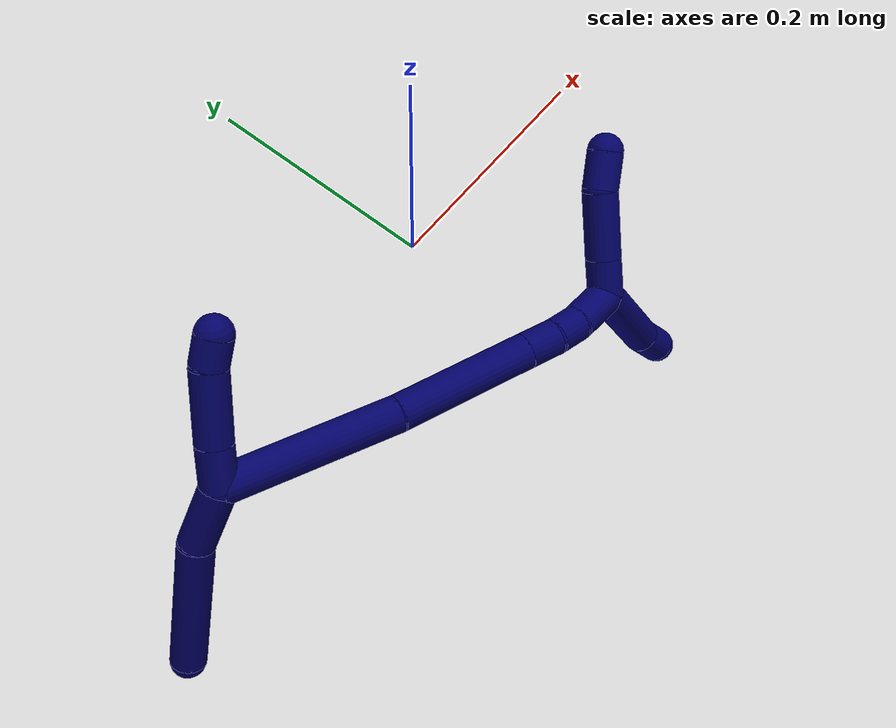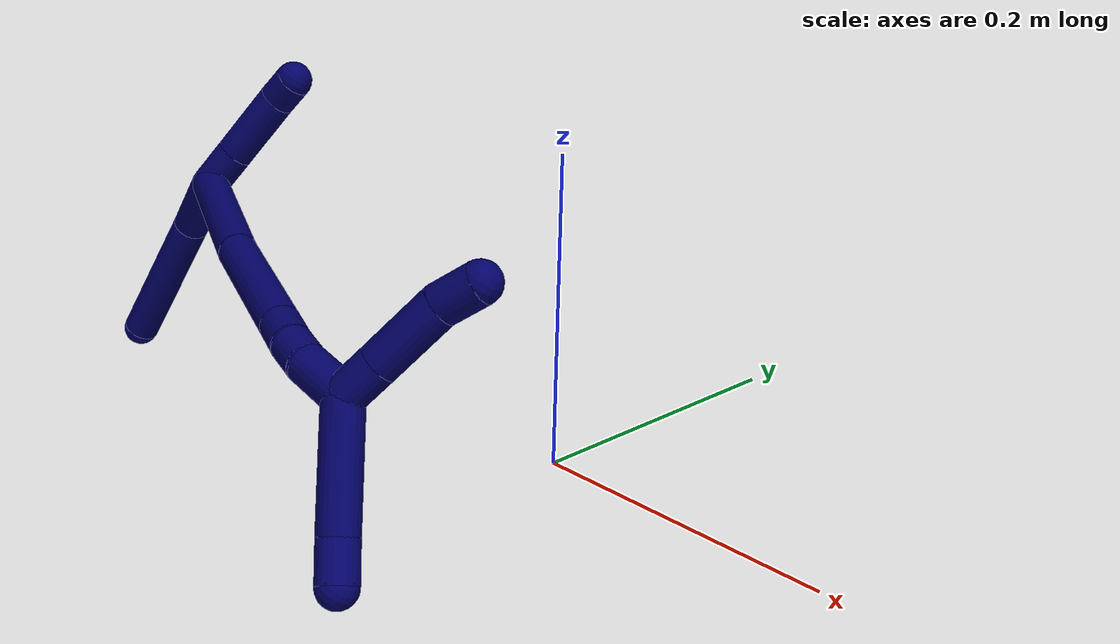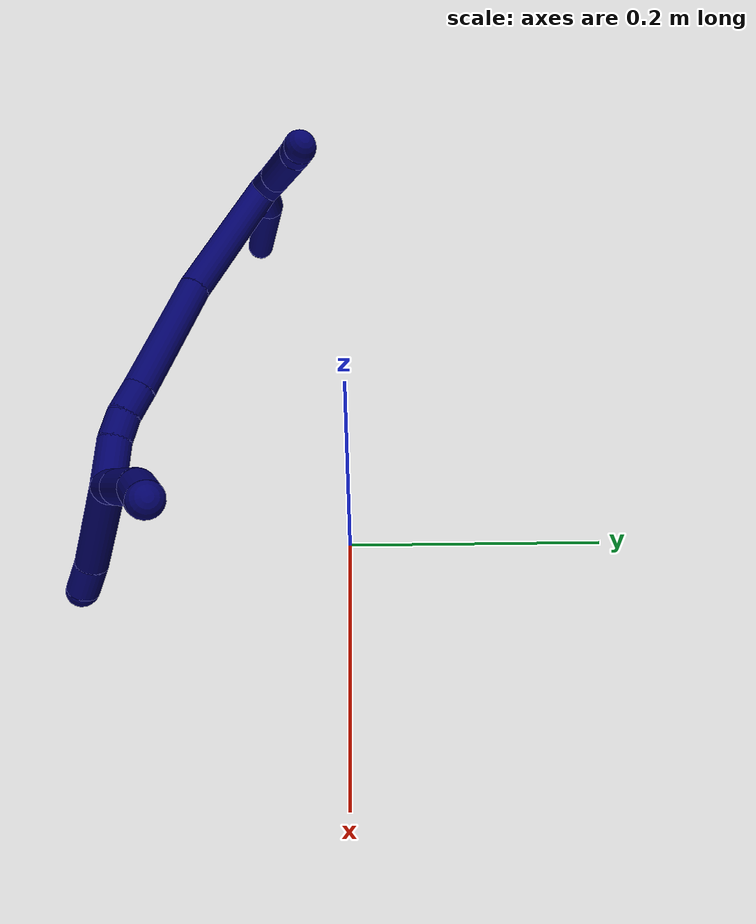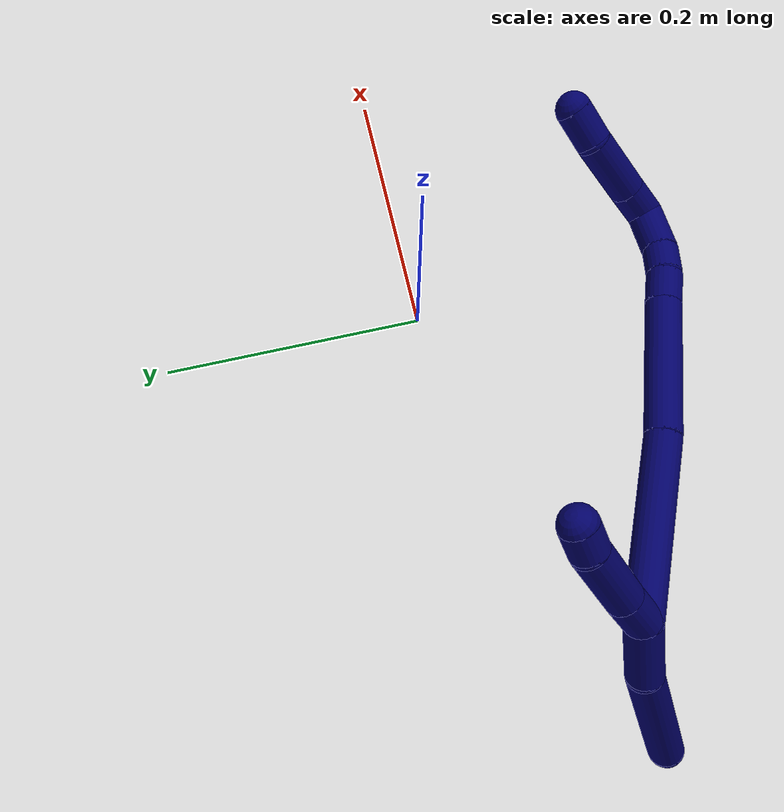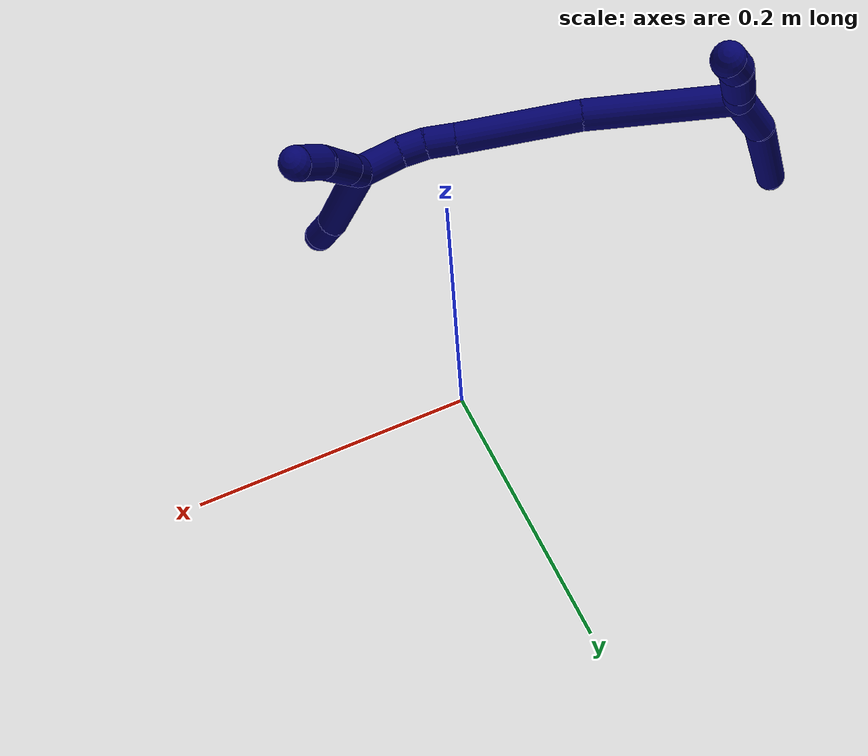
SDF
<sdf version="1.7">
 <world name="default">
  <model name="7">
   <static>0</static>
   <link name="7">
    <collision name="collision-cylinder-e_1_2_8">
     <pose>-0.009732 0.002984 -0.021459 -3.00341 -0.422196 2.51689</pose>
     <geometry><cylinder><radius>0.0125</radius><length>0.047502</length></cylinder></geometry>
     <surface>
      <friction><ode><mu>1.16</mu><mu2>1.16</mu2><slip1>0</slip1><slip2>0</slip2></ode></friction>
      <contact><ode><kp>1e+06</kp><kd>1</kd><max_vel>0</max_vel><min_depth>0.001</min_depth></ode></contact>
     </surface>
    </collision>
    <visual name="visual-cylinder-e_1_2_8">
     <pose>-0.009732 0.002984 -0.021459 -3.00341 -0.422196 2.51689</pose>
     <geometry><cylinder><radius>0.0125</radius><length>0.047502</length></cylinder></geometry>
     <material><ambient>0.003922 0 0.403922 1</ambient></material>
    </visual>
    <collision name="collision-cylinder-e_2_8_6">
     <pose>-0.028862 0.01049 -0.093095 -3.05172 -0.184405 2.23632</pose>
     <geometry><cylinder><radius>0.0125</radius><length>0.102498</length></cylinder></geometry>
     <surface>
      <friction><ode><mu>1.16</mu><mu2>1.16</mu2><slip1>0</slip1><slip2>0</slip2></ode></friction>
      <contact><ode><kp>1e+06</kp><kd>1</kd><max_vel>0</max_vel><min_depth>0.001</min_depth></ode></contact>
     </surface>
    </collision>
    <visual name="visual-cylinder-e_2_8_6">
     <pose>-0.028862 0.01049 -0.093095 -3.05172 -0.184405 2.23632</pose>
     <geometry><cylinder><radius>0.0125</radius><length>0.102498</length></cylinder></geometry>
     <material><ambient>0.003922 0 0.403922 1</ambient></material>
    </visual>
    <collision name="collision-cylinder-e_1_2_9">
     <pose>0.000862 0.001904 0.014836 -0.127625 0.05754 -0.003678</pose>
     <geometry><cylinder><radius>0.0125</radius><length>0.029966</length></cylinder></geometry>
     <surface>
      <friction><ode><mu>1.16</mu><mu2>1.16</mu2><slip1>0</slip1><slip2>0</slip2></ode></friction>
      <contact><ode><kp>1e+06</kp><kd>1</kd><max_vel>0</max_vel><min_depth>0.001</min_depth></ode></contact>
     </surface>
    </collision>
    <visual name="visual-cylinder-e_1_2_9">
     <pose>0.000862 0.001904 0.014836 -0.127625 0.05754 -0.003678</pose>
     <geometry><cylinder><radius>0.0125</radius><length>0.029966</length></cylinder></geometry>
     <material><ambient>0.003922 0 0.403922 1</ambient></material>
    </visual>
    <collision name="collision-cylinder-e_2_9_10">
     <pose>0.003971 0.006699 0.054339 -0.116705 0.09027 -0.005277</pose>
     <geometry><cylinder><radius>0.0125</radius><length>0.049873</length></cylinder></geometry>
     <surface>
      <friction><ode><mu>1.16</mu><mu2>1.16</mu2><slip1>0</slip1><slip2>0</slip2></ode></friction>
      <contact><ode><kp>1e+06</kp><kd>1</kd><max_vel>0</max_vel><min_depth>0.001</min_depth></ode></contact>
     </surface>
    </collision>
    <visual name="visual-cylinder-e_2_9_10">
     <pose>0.003971 0.006699 0.054339 -0.116705 0.09027 -0.005277</pose>
     <geometry><cylinder><radius>0.0125</radius><length>0.049873</length></cylinder></geometry>
     <material><ambient>0.003922 0 0.403922 1</ambient></material>
    </visual>
    <collision name="collision-cylinder-e_3_10_5">
     <pose>0.009343 0.010604 0.088536 -0.105843 0.315031 -0.016826</pose>
     <geometry><cylinder><radius>0.0125</radius><length>0.020161</length></cylinder></geometry>
     <surface>
      <friction><ode><mu>1.16</mu><mu2>1.16</mu2><slip1>0</slip1><slip2>0</slip2></ode></friction>
      <contact><ode><kp>1e+06</kp><kd>1</kd><max_vel>0</max_vel><min_depth>0.001</min_depth></ode></contact>
     </surface>
    </collision>
    <visual name="visual-cylinder-e_3_10_5">
     <pose>0.009343 0.010604 0.088536 -0.105843 0.315031 -0.016826</pose>
     <geometry><cylinder><radius>0.0125</radius><length>0.020161</length></cylinder></geometry>
     <material><ambient>0.003922 0 0.403922 1</ambient></material>
    </visual>
    <collision name="collision-cylinder-e_1_2_11">
     <pose>0.059419 0.010197 0.006114 -1.0307 1.37332 -0.869366</pose>
     <geometry><cylinder><radius>0.0125</radius><length>0.121194</length></cylinder></geometry>
     <surface>
      <friction><ode><mu>1.16</mu><mu2>1.16</mu2><slip1>0</slip1><slip2>0</slip2></ode></friction>
      <contact><ode><kp>1e+06</kp><kd>1</kd><max_vel>0</max_vel><min_depth>0.001</min_depth></ode></contact>
     </surface>
    </collision>
    <visual name="visual-cylinder-e_1_2_11">
     <pose>0.059419 0.010197 0.006114 -1.0307 1.37332 -0.869366</pose>
     <geometry><cylinder><radius>0.0125</radius><length>0.121194</length></cylinder></geometry>
     <material><ambient>0.003922 0 0.403922 1</ambient></material>
    </visual>
    <collision name="collision-cylinder-e_2_11_12">
     <pose>0.166299 0.033231 0.017656 -1.17071 1.28514 -0.921156</pose>
     <geometry><cylinder><radius>0.0125</radius><length>0.09893</length></cylinder></geometry>
     <surface>
      <friction><ode><mu>1.16</mu><mu2>1.16</mu2><slip1>0</slip1><slip2>0</slip2></ode></friction>
      <contact><ode><kp>1e+06</kp><kd>1</kd><max_vel>0</max_vel><min_depth>0.001</min_depth></ode></contact>
     </surface>
    </collision>
    <visual name="visual-cylinder-e_2_11_12">
     <pose>0.166299 0.033231 0.017656 -1.17071 1.28514 -0.921156</pose>
     <geometry><cylinder><radius>0.0125</radius><length>0.09893</length></cylinder></geometry>
     <material><ambient>0.003922 0 0.403922 1</ambient></material>
    </visual>
    <collision name="collision-cylinder-e_3_12_13">
     <pose>0.225349 0.04886 0.024572 -1.08148 1.30444 -0.859897</pose>
     <geometry><cylinder><radius>0.0125</radius><length>0.024027</length></cylinder></geometry>
     <surface>
      <friction><ode><mu>1.16</mu><mu2>1.16</mu2><slip1>0</slip1><slip2>0</slip2></ode></friction>
      <contact><ode><kp>1e+06</kp><kd>1</kd><max_vel>0</max_vel><min_depth>0.001</min_depth></ode></contact>
     </surface>
    </collision>
    <visual name="visual-cylinder-e_3_12_13">
     <pose>0.225349 0.04886 0.024572 -1.08148 1.30444 -0.859897</pose>
     <geometry><cylinder><radius>0.0125</radius><length>0.024027</length></cylinder></geometry>
     <material><ambient>0.003922 0 0.403922 1</ambient></material>
    </visual>
    <collision name="collision-cylinder-e_4_13_14">
     <pose>0.246467 0.055772 0.027148 -1.31213 1.15017 -0.925644</pose>
     <geometry><cylinder><radius>0.0125</radius><length>0.020876</length></cylinder></geometry>
     <surface>
      <friction><ode><mu>1.16</mu><mu2>1.16</mu2><slip1>0</slip1><slip2>0</slip2></ode></friction>
      <contact><ode><kp>1e+06</kp><kd>1</kd><max_vel>0</max_vel><min_depth>0.001</min_depth></ode></contact>
     </surface>
    </collision>
    <visual name="visual-cylinder-e_4_13_14">
     <pose>0.246467 0.055772 0.027148 -1.31213 1.15017 -0.925644</pose>
     <geometry><cylinder><radius>0.0125</radius><length>0.020876</length></cylinder></geometry>
     <material><ambient>0.003922 0 0.403922 1</ambient></material>
    </visual>
    <collision name="collision-cylinder-e_5_14_1">
     <pose>0.270392 0.069393 0.031113 -1.27694 0.967163 -0.743306</pose>
     <geometry><cylinder><radius>0.0125</radius><length>0.034973</length></cylinder></geometry>
     <surface>
      <friction><ode><mu>1.16</mu><mu2>1.16</mu2><slip1>0</slip1><slip2>0</slip2></ode></friction>
      <contact><ode><kp>1e+06</kp><kd>1</kd><max_vel>0</max_vel><min_depth>0.001</min_depth></ode></contact>
     </surface>
    </collision>
    <visual name="visual-cylinder-e_5_14_1">
     <pose>0.270392 0.069393 0.031113 -1.27694 0.967163 -0.743306</pose>
     <geometry><cylinder><radius>0.0125</radius><length>0.034973</length></cylinder></geometry>
     <material><ambient>0.003922 0 0.403922 1</ambient></material>
    </visual>
    <collision name="collision-cylinder-e_1_1_15">
     <pose>0.285065 0.081912 0.0471 -0.226254 0.02055 -0.002335</pose>
     <geometry><cylinder><radius>0.0125</radius><length>0.026915</length></cylinder></geometry>
     <surface>
      <friction><ode><mu>1.16</mu><mu2>1.16</mu2><slip1>0</slip1><slip2>0</slip2></ode></friction>
      <contact><ode><kp>1e+06</kp><kd>1</kd><max_vel>0</max_vel><min_depth>0.001</min_depth></ode></contact>
     </surface>
    </collision>
    <visual name="visual-cylinder-e_1_1_15">
     <pose>0.285065 0.081912 0.0471 -0.226254 0.02055 -0.002335</pose>
     <geometry><cylinder><radius>0.0125</radius><length>0.026915</length></cylinder></geometry>
     <material><ambient>0.003922 0 0.403922 1</ambient></material>
    </visual>
    <collision name="collision-cylinder-e_2_15_16">
     <pose>0.28599 0.089925 0.083055 -0.215294 0.027725 -0.002996</pose>
     <geometry><cylinder><radius>0.0125</radius><length>0.046784</length></cylinder></geometry>
     <surface>
      <friction><ode><mu>1.16</mu><mu2>1.16</mu2><slip1>0</slip1><slip2>0</slip2></ode></friction>
      <contact><ode><kp>1e+06</kp><kd>1</kd><max_vel>0</max_vel><min_depth>0.001</min_depth></ode></contact>
     </surface>
    </collision>
    <visual name="visual-cylinder-e_2_15_16">
     <pose>0.28599 0.089925 0.083055 -0.215294 0.027725 -0.002996</pose>
     <geometry><cylinder><radius>0.0125</radius><length>0.046784</length></cylinder></geometry>
     <material><ambient>0.003922 0 0.403922 1</ambient></material>
    </visual>
    <collision name="collision-cylinder-e_3_16_4">
     <pose>0.290243 0.099371 0.117736 -0.359608 0.277722 -0.050797</pose>
     <geometry><cylinder><radius>0.0125</radius><length>0.026301</length></cylinder></geometry>
     <surface>
      <friction><ode><mu>1.16</mu><mu2>1.16</mu2><slip1>0</slip1><slip2>0</slip2></ode></friction>
      <contact><ode><kp>1e+06</kp><kd>1</kd><max_vel>0</max_vel><min_depth>0.001</min_depth></ode></contact>
     </surface>
    </collision>
    <visual name="visual-cylinder-e_3_16_4">
     <pose>0.290243 0.099371 0.117736 -0.359608 0.277722 -0.050797</pose>
     <geometry><cylinder><radius>0.0125</radius><length>0.026301</length></cylinder></geometry>
     <material><ambient>0.003922 0 0.403922 1</ambient></material>
    </visual>
    <collision name="collision-cylinder-e_1_1_17">
     <pose>0.305144 0.092822 0.006175 -2.67732 0.579475 -1.80075</pose>
     <geometry><cylinder><radius>0.0125</radius><length>0.07435</length></cylinder></geometry>
     <surface>
      <friction><ode><mu>1.16</mu><mu2>1.16</mu2><slip1>0</slip1><slip2>0</slip2></ode></friction>
      <contact><ode><kp>1e+06</kp><kd>1</kd><max_vel>0</max_vel><min_depth>0.001</min_depth></ode></contact>
     </surface>
    </collision>
    <visual name="visual-cylinder-e_1_1_17">
     <pose>0.305144 0.092822 0.006175 -2.67732 0.579475 -1.80075</pose>
     <geometry><cylinder><radius>0.0125</radius><length>0.07435</length></cylinder></geometry>
     <material><ambient>0.003922 0 0.403922 1</ambient></material>
    </visual>
    <collision name="collision-cylinder-e_2_17_3">
     <pose>0.334062 0.111149 -0.030114 -2.66283 0.730917 -2.00606</pose>
     <geometry><cylinder><radius>0.0125</radius><length>0.02565</length></cylinder></geometry>
     <surface>
      <friction><ode><mu>1.16</mu><mu2>1.16</mu2><slip1>0</slip1><slip2>0</slip2></ode></friction>
      <contact><ode><kp>1e+06</kp><kd>1</kd><max_vel>0</max_vel><min_depth>0.001</min_depth></ode></contact>
     </surface>
    </collision>
    <visual name="visual-cylinder-e_2_17_3">
     <pose>0.334062 0.111149 -0.030114 -2.66283 0.730917 -2.00606</pose>
     <geometry><cylinder><radius>0.0125</radius><length>0.02565</length></cylinder></geometry>
     <material><ambient>0.003922 0 0.403922 1</ambient></material>
    </visual>
    <collision name="collision-sphere-3">
     <pose>0.342624 0.115548 -0.038589 0 -0 0</pose>
     <geometry><sphere><radius>0.0125</radius></sphere></geometry>
     <surface>
      <friction><ode><mu>1.16</mu><mu2>1.16</mu2><slip1>0</slip1><slip2>0</slip2></ode></friction>
      <contact><ode><kp>1e+06</kp><kd>1</kd><max_vel>0</max_vel><min_depth>0.001</min_depth></ode></contact>
     </surface>
    </collision>
    <visual name="visual-sphere-3">
     <pose>0.342624 0.115548 -0.038589 0 -0 0</pose>
     <geometry><sphere><radius>0.0125</radius></sphere></geometry>
     <material><ambient>0.003922 0 0.403922 1</ambient></material>
    </visual>
    <collision name="collision-sphere-17">
     <pose>0.325501 0.10675 -0.021639 0 -0 0</pose>
     <geometry><sphere><radius>0.0125</radius></sphere></geometry>
     <surface>
      <friction><ode><mu>1.16</mu><mu2>1.16</mu2><slip1>0</slip1><slip2>0</slip2></ode></friction>
      <contact><ode><kp>1e+06</kp><kd>1</kd><max_vel>0</max_vel><min_depth>0.001</min_depth></ode></contact>
     </surface>
    </collision>
    <visual name="visual-sphere-17">
     <pose>0.325501 0.10675 -0.021639 0 -0 0</pose>
     <geometry><sphere><radius>0.0125</radius></sphere></geometry>
     <material><ambient>0.003922 0 0.403922 1</ambient></material>
    </visual>
    <collision name="collision-sphere-4">
     <pose>0.293849 0.103822 0.129574 0 -0 0</pose>
     <geometry><sphere><radius>0.0125</radius></sphere></geometry>
     <surface>
      <friction><ode><mu>1.16</mu><mu2>1.16</mu2><slip1>0</slip1><slip2>0</slip2></ode></friction>
      <contact><ode><kp>1e+06</kp><kd>1</kd><max_vel>0</max_vel><min_depth>0.001</min_depth></ode></contact>
     </surface>
    </collision>
    <visual name="visual-sphere-4">
     <pose>0.293849 0.103822 0.129574 0 -0 0</pose>
     <geometry><sphere><radius>0.0125</radius></sphere></geometry>
     <material><ambient>0.003922 0 0.403922 1</ambient></material>
    </visual>
    <collision name="collision-sphere-16">
     <pose>0.286638 0.094921 0.105898 0 -0 0</pose>
     <geometry><sphere><radius>0.0125</radius></sphere></geometry>
     <surface>
      <friction><ode><mu>1.16</mu><mu2>1.16</mu2><slip1>0</slip1><slip2>0</slip2></ode></friction>
      <contact><ode><kp>1e+06</kp><kd>1</kd><max_vel>0</max_vel><min_depth>0.001</min_depth></ode></contact>
     </surface>
    </collision>
    <visual name="visual-sphere-16">
     <pose>0.286638 0.094921 0.105898 0 -0 0</pose>
     <geometry><sphere><radius>0.0125</radius></sphere></geometry>
     <material><ambient>0.003922 0 0.403922 1</ambient></material>
    </visual>
    <collision name="collision-sphere-15">
     <pose>0.285341 0.08493 0.060212 0 -0 0</pose>
     <geometry><sphere><radius>0.0125</radius></sphere></geometry>
     <surface>
      <friction><ode><mu>1.16</mu><mu2>1.16</mu2><slip1>0</slip1><slip2>0</slip2></ode></friction>
      <contact><ode><kp>1e+06</kp><kd>1</kd><max_vel>0</max_vel><min_depth>0.001</min_depth></ode></contact>
     </surface>
    </collision>
    <visual name="visual-sphere-15">
     <pose>0.285341 0.08493 0.060212 0 -0 0</pose>
     <geometry><sphere><radius>0.0125</radius></sphere></geometry>
     <material><ambient>0.003922 0 0.403922 1</ambient></material>
    </visual>
    <collision name="collision-sphere-1">
     <pose>0.284788 0.078893 0.033988 0 -0 0</pose>
     <geometry><sphere><radius>0.0125</radius></sphere></geometry>
     <surface>
      <friction><ode><mu>1.16</mu><mu2>1.16</mu2><slip1>0</slip1><slip2>0</slip2></ode></friction>
      <contact><ode><kp>1e+06</kp><kd>1</kd><max_vel>0</max_vel><min_depth>0.001</min_depth></ode></contact>
     </surface>
    </collision>
    <visual name="visual-sphere-1">
     <pose>0.284788 0.078893 0.033988 0 -0 0</pose>
     <geometry><sphere><radius>0.0125</radius></sphere></geometry>
     <material><ambient>0.003922 0 0.403922 1</ambient></material>
    </visual>
    <collision name="collision-sphere-14">
     <pose>0.255995 0.059892 0.028238 0 -0 0</pose>
     <geometry><sphere><radius>0.0125</radius></sphere></geometry>
     <surface>
      <friction><ode><mu>1.16</mu><mu2>1.16</mu2><slip1>0</slip1><slip2>0</slip2></ode></friction>
      <contact><ode><kp>1e+06</kp><kd>1</kd><max_vel>0</max_vel><min_depth>0.001</min_depth></ode></contact>
     </surface>
    </collision>
    <visual name="visual-sphere-14">
     <pose>0.255995 0.059892 0.028238 0 -0 0</pose>
     <geometry><sphere><radius>0.0125</radius></sphere></geometry>
     <material><ambient>0.003922 0 0.403922 1</ambient></material>
    </visual>
    <collision name="collision-sphere-13">
     <pose>0.236939 0.051651 0.026058 0 -0 0</pose>
     <geometry><sphere><radius>0.0125</radius></sphere></geometry>
     <surface>
      <friction><ode><mu>1.16</mu><mu2>1.16</mu2><slip1>0</slip1><slip2>0</slip2></ode></friction>
      <contact><ode><kp>1e+06</kp><kd>1</kd><max_vel>0</max_vel><min_depth>0.001</min_depth></ode></contact>
     </surface>
    </collision>
    <visual name="visual-sphere-13">
     <pose>0.236939 0.051651 0.026058 0 -0 0</pose>
     <geometry><sphere><radius>0.0125</radius></sphere></geometry>
     <material><ambient>0.003922 0 0.403922 1</ambient></material>
    </visual>
    <collision name="collision-sphere-12">
     <pose>0.213759 0.046069 0.023085 0 -0 0</pose>
     <geometry><sphere><radius>0.0125</radius></sphere></geometry>
     <surface>
      <friction><ode><mu>1.16</mu><mu2>1.16</mu2><slip1>0</slip1><slip2>0</slip2></ode></friction>
      <contact><ode><kp>1e+06</kp><kd>1</kd><max_vel>0</max_vel><min_depth>0.001</min_depth></ode></contact>
     </surface>
    </collision>
    <visual name="visual-sphere-12">
     <pose>0.213759 0.046069 0.023085 0 -0 0</pose>
     <geometry><sphere><radius>0.0125</radius></sphere></geometry>
     <material><ambient>0.003922 0 0.403922 1</ambient></material>
    </visual>
    <collision name="collision-sphere-11">
     <pose>0.118838 0.020393 0.012227 0 -0 0</pose>
     <geometry><sphere><radius>0.0125</radius></sphere></geometry>
     <surface>
      <friction><ode><mu>1.16</mu><mu2>1.16</mu2><slip1>0</slip1><slip2>0</slip2></ode></friction>
      <contact><ode><kp>1e+06</kp><kd>1</kd><max_vel>0</max_vel><min_depth>0.001</min_depth></ode></contact>
     </surface>
    </collision>
    <visual name="visual-sphere-11">
     <pose>0.118838 0.020393 0.012227 0 -0 0</pose>
     <geometry><sphere><radius>0.0125</radius></sphere></geometry>
     <material><ambient>0.003922 0 0.403922 1</ambient></material>
    </visual>
    <collision name="collision-sphere-8">
     <pose>-0.019465 0.005968 -0.042918 0 -0 0</pose>
     <geometry><sphere><radius>0.0125</radius></sphere></geometry>
     <surface>
      <friction><ode><mu>1.16</mu><mu2>1.16</mu2><slip1>0</slip1><slip2>0</slip2></ode></friction>
      <contact><ode><kp>1e+06</kp><kd>1</kd><max_vel>0</max_vel><min_depth>0.001</min_depth></ode></contact>
     </surface>
    </collision>
    <visual name="visual-sphere-8">
     <pose>-0.019465 0.005968 -0.042918 0 -0 0</pose>
     <geometry><sphere><radius>0.0125</radius></sphere></geometry>
     <material><ambient>0.003922 0 0.403922 1</ambient></material>
    </visual>
    <collision name="collision-sphere-2">
     <geometry><sphere><radius>0.0125</radius></sphere></geometry>
     <surface>
      <friction><ode><mu>1.16</mu><mu2>1.16</mu2><slip1>0</slip1><slip2>0</slip2></ode></friction>
      <contact><ode><kp>1e+06</kp><kd>1</kd><max_vel>0</max_vel><min_depth>0.001</min_depth></ode></contact>
     </surface>
    </collision>
    <visual name="visual-sphere-2">
     <geometry><sphere><radius>0.0125</radius></sphere></geometry>
     <material><ambient>0.003922 0 0.403922 1</ambient></material>
    </visual>
    <collision name="collision-sphere-9">
     <pose>0.001723 0.003808 0.029673 0 -0 0</pose>
     <geometry><sphere><radius>0.0125</radius></sphere></geometry>
     <surface>
      <friction><ode><mu>1.16</mu><mu2>1.16</mu2><slip1>0</slip1><slip2>0</slip2></ode></friction>
      <contact><ode><kp>1e+06</kp><kd>1</kd><max_vel>0</max_vel><min_depth>0.001</min_depth></ode></contact>
     </surface>
    </collision>
    <visual name="visual-sphere-9">
     <pose>0.001723 0.003808 0.029673 0 -0 0</pose>
     <geometry><sphere><radius>0.0125</radius></sphere></geometry>
     <material><ambient>0.003922 0 0.403922 1</ambient></material>
    </visual>
    <collision name="collision-sphere-6">
     <pose>-0.038259 0.015012 -0.143271 0 -0 0</pose>
     <geometry><sphere><radius>0.0125</radius></sphere></geometry>
     <surface>
      <friction><ode><mu>1.16</mu><mu2>1.16</mu2><slip1>0</slip1><slip2>0</slip2></ode></friction>
      <contact><ode><kp>1e+06</kp><kd>1</kd><max_vel>0</max_vel><min_depth>0.001</min_depth></ode></contact>
     </surface>
    </collision>
    <visual name="visual-sphere-6">
     <pose>-0.038259 0.015012 -0.143271 0 -0 0</pose>
     <geometry><sphere><radius>0.0125</radius></sphere></geometry>
     <material><ambient>0.003922 0 0.403922 1</ambient></material>
    </visual>
    <collision name="collision-sphere-10">
     <pose>0.006219 0.009591 0.079005 0 -0 0</pose>
     <geometry><sphere><radius>0.0125</radius></sphere></geometry>
     <surface>
      <friction><ode><mu>1.16</mu><mu2>1.16</mu2><slip1>0</slip1><slip2>0</slip2></ode></friction>
      <contact><ode><kp>1e+06</kp><kd>1</kd><max_vel>0</max_vel><min_depth>0.001</min_depth></ode></contact>
     </surface>
    </collision>
    <visual name="visual-sphere-10">
     <pose>0.006219 0.009591 0.079005 0 -0 0</pose>
     <geometry><sphere><radius>0.0125</radius></sphere></geometry>
     <material><ambient>0.003922 0 0.403922 1</ambient></material>
    </visual>
    <collision name="collision-sphere-5">
     <pose>0.012466 0.011616 0.098067 0 -0 0</pose>
     <geometry><sphere><radius>0.0125</radius></sphere></geometry>
     <surface>
      <friction><ode><mu>1.16</mu><mu2>1.16</mu2><slip1>0</slip1><slip2>0</slip2></ode></friction>
      <contact><ode><kp>1e+06</kp><kd>1</kd><max_vel>0</max_vel><min_depth>0.001</min_depth></ode></contact>
     </surface>
    </collision>
    <visual name="visual-sphere-5">
     <pose>0.012466 0.011616 0.098067 0 -0 0</pose>
     <geometry><sphere><radius>0.0125</radius></sphere></geometry>
     <material><ambient>0.003922 0 0.403922 1</ambient></material>
    </visual>
    <inertial>
     <pose>0.134137 0.039851 0.009397 0 -0 0</pose>
     <mass>0.75</mass>
     <inertia>
      <ixx>2.3e-05</ixx>
      <ixy>0</ixy>
      <ixz>0</ixz>
      <iyy>0.000368</iyy>
      <iyz>0</iyz>
      <izz>-0.000323</izz>
     </inertia>
    </inertial>
   </link>
   <pose>-0.272404 -0.072427 0.137536 -0.548908 0.097268 -0.621819</pose>
  </model>
 </world>
</sdf>
